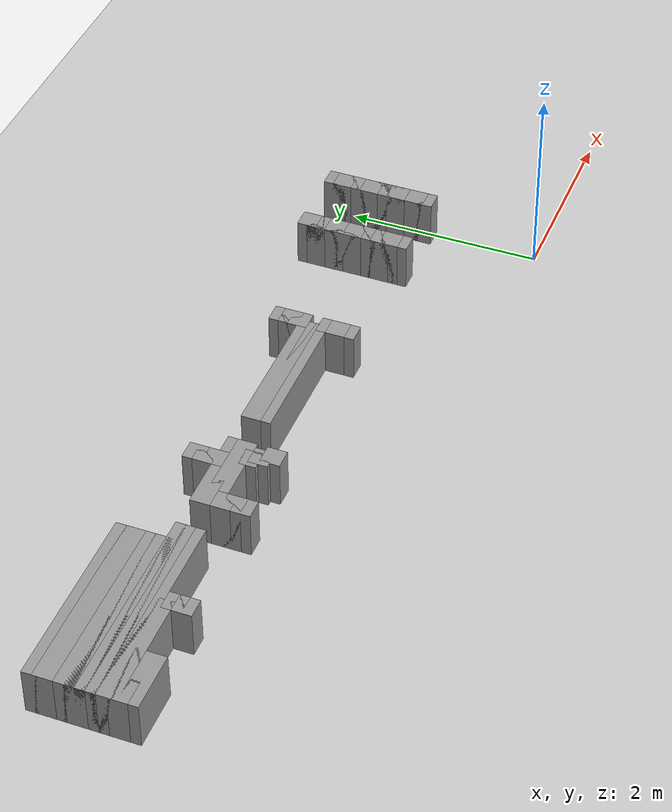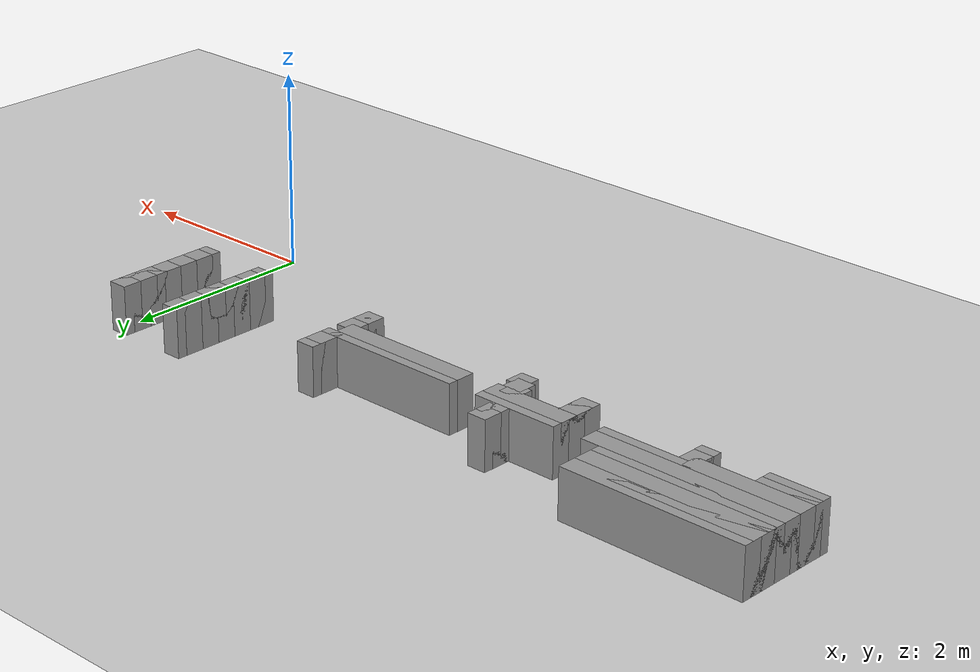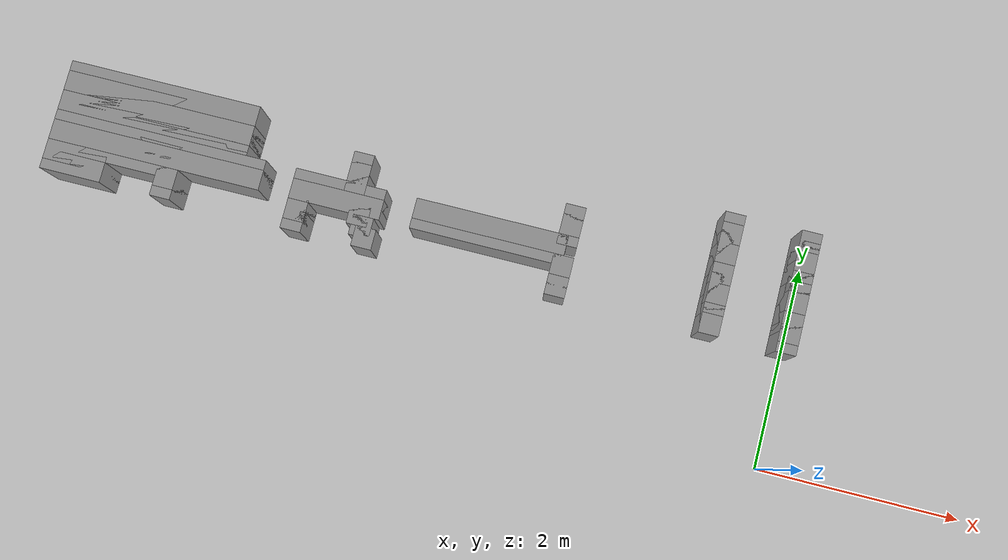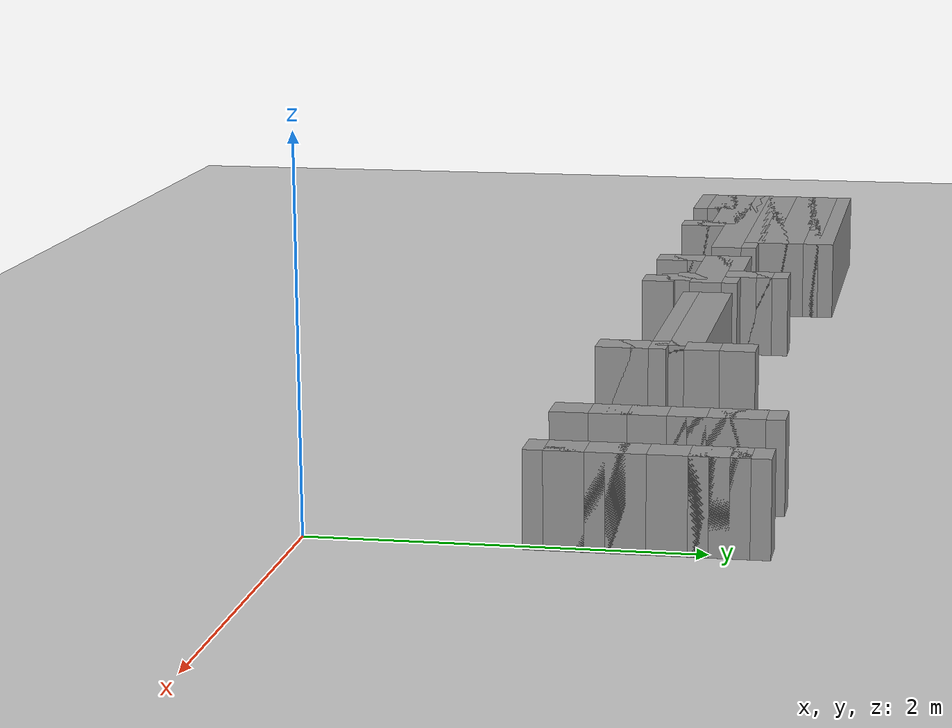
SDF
<sdf version="1.6">
 <world name="GridMap">
  <include><uri>model://sun</uri></include>
  <include><uri>model://ground_plane</uri></include>
  <model name="GridMap">
   <link name="Wall_(0.5,12.0)">
    <collision name="Wall_(0.5,12.0)_Collision">
     <geometry><box><size>0.2 0.2 0.5</size></box></geometry>
     <pose>-0.05 1.2000000000000002 0.25 0 -0 0</pose>
    </collision>
    <inertial>
     <mass>0.5</mass>
     <pose>0 0.01 0 0 0 0</pose>
     <inertia><ixx>0.004</ixx><ixy>0.001</ixy><ixz>0</ixz><iyy>0.006</iyy><iyz>0</iyz><izz>0.007</izz></inertia>
    </inertial>
    <visual name="Wall_(0.5,12.0)_Visual">
     <geometry><box><size>0.2 0.2 0.5</size></box></geometry>
     <pose>-0.05 1.2000000000000002 0.25 0 -0 0</pose>
     <material>
      <script><uri>file://media/materials/scripts/gazebo.material</uri><name>Gazebo/Grey</name></script>
      <ambient>1 1 1 1</ambient>
     </material>
     <meta><layer>0</layer></meta>
    </visual>
   </link>
   <link name="Wall_(8.0,12.0)">
    <collision name="Wall_(8.0,12.0)_Collision">
     <geometry><box><size>0.2 0.2 0.5</size></box></geometry>
     <pose>-0.8 1.2000000000000002 0.25 0 -0 0</pose>
    </collision>
    <inertial>
     <mass>0.5</mass>
     <pose>0 0.01 0 0 0 0</pose>
     <inertia><ixx>0.004</ixx><ixy>0.001</ixy><ixz>0</ixz><iyy>0.006</iyy><iyz>0</iyz><izz>0.007</izz></inertia>
    </inertial>
    <visual name="Wall_(8.0,12.0)_Visual">
     <geometry><box><size>0.2 0.2 0.5</size></box></geometry>
     <pose>-0.8 1.2000000000000002 0.25 0 -0 0</pose>
     <material>
      <script><uri>file://media/materials/scripts/gazebo.material</uri><name>Gazebo/Grey</name></script>
      <ambient>1 1 1 1</ambient>
     </material>
     <meta><layer>0</layer></meta>
    </visual>
   </link>
   <link name="Wall_(23.0,12.0)">
    <collision name="Wall_(23.0,12.0)_Collision">
     <geometry><box><size>0.2 0.2 0.5</size></box></geometry>
     <pose>-2.3000000000000003 1.2000000000000002 0.25 0 -0 0</pose>
    </collision>
    <inertial>
     <mass>0.5</mass>
     <pose>0 0.01 0 0 0 0</pose>
     <inertia><ixx>0.004</ixx><ixy>0.001</ixy><ixz>0</ixz><iyy>0.006</iyy><iyz>0</iyz><izz>0.007</izz></inertia>
    </inertial>
    <visual name="Wall_(23.0,12.0)_Visual">
     <geometry><box><size>0.2 0.2 0.5</size></box></geometry>
     <pose>-2.3000000000000003 1.2000000000000002 0.25 0 -0 0</pose>
     <material>
      <script><uri>file://media/materials/scripts/gazebo.material</uri><name>Gazebo/Grey</name></script>
      <ambient>1 1 1 1</ambient>
     </material>
     <meta><layer>0</layer></meta>
    </visual>
   </link>
   <link name="Wall_(42.0,12.0)">
    <collision name="Wall_(42.0,12.0)_Collision">
     <geometry><box><size>0.2 0.2 0.5</size></box></geometry>
     <pose>-4.2 1.2000000000000002 0.25 0 -0 0</pose>
    </collision>
    <inertial>
     <mass>0.5</mass>
     <pose>0 0.01 0 0 0 0</pose>
     <inertia><ixx>0.004</ixx><ixy>0.001</ixy><ixz>0</ixz><iyy>0.006</iyy><iyz>0</iyz><izz>0.007</izz></inertia>
    </inertial>
    <visual name="Wall_(42.0,12.0)_Visual">
     <geometry><box><size>0.2 0.2 0.5</size></box></geometry>
     <pose>-4.2 1.2000000000000002 0.25 0 -0 0</pose>
     <material>
      <script><uri>file://media/materials/scripts/gazebo.material</uri><name>Gazebo/Grey</name></script>
      <ambient>1 1 1 1</ambient>
     </material>
     <meta><layer>0</layer></meta>
    </visual>
   </link>
   <link name="Wall_(49.0,12.0)">
    <collision name="Wall_(49.0,12.0)_Collision">
     <geometry><box><size>0.2 0.2 0.5</size></box></geometry>
     <pose>-4.9 1.2000000000000002 0.25 0 -0 0</pose>
    </collision>
    <inertial>
     <mass>0.5</mass>
     <pose>0 0.01 0 0 0 0</pose>
     <inertia><ixx>0.004</ixx><ixy>0.001</ixy><ixz>0</ixz><iyy>0.006</iyy><iyz>0</iyz><izz>0.007</izz></inertia>
    </inertial>
    <visual name="Wall_(49.0,12.0)_Visual">
     <geometry><box><size>0.2 0.2 0.5</size></box></geometry>
     <pose>-4.9 1.2000000000000002 0.25 0 -0 0</pose>
     <material>
      <script><uri>file://media/materials/scripts/gazebo.material</uri><name>Gazebo/Grey</name></script>
      <ambient>1 1 1 1</ambient>
     </material>
     <meta><layer>0</layer></meta>
    </visual>
   </link>
   <link name="Wall_(62.0,12.0)">
    <collision name="Wall_(62.0,12.0)_Collision">
     <geometry><box><size>0.2 0.2 0.5</size></box></geometry>
     <pose>-6.2 1.2000000000000002 0.25 0 -0 0</pose>
    </collision>
    <inertial>
     <mass>0.5</mass>
     <pose>0 0.01 0 0 0 0</pose>
     <inertia><ixx>0.004</ixx><ixy>0.001</ixy><ixz>0</ixz><iyy>0.006</iyy><iyz>0</iyz><izz>0.007</izz></inertia>
    </inertial>
    <visual name="Wall_(62.0,12.0)_Visual">
     <geometry><box><size>0.2 0.2 0.5</size></box></geometry>
     <pose>-6.2 1.2000000000000002 0.25 0 -0 0</pose>
     <material>
      <script><uri>file://media/materials/scripts/gazebo.material</uri><name>Gazebo/Grey</name></script>
      <ambient>1 1 1 1</ambient>
     </material>
     <meta><layer>0</layer></meta>
    </visual>
   </link>
   <link name="Wall_(71.0,12.0)">
    <collision name="Wall_(71.0,12.0)_Collision">
     <geometry><box><size>0.6000000000000001 0.2 0.5</size></box></geometry>
     <pose>-7.1000000000000005 1.2000000000000002 0.25 0 -0 0</pose>
    </collision>
    <inertial>
     <mass>0.5</mass>
     <pose>0 0.01 0 0 0 0</pose>
     <inertia><ixx>0.004</ixx><ixy>0.001</ixy><ixz>0</ixz><iyy>0.006</iyy><iyz>0</iyz><izz>0.007</izz></inertia>
    </inertial>
    <visual name="Wall_(71.0,12.0)_Visual">
     <geometry><box><size>0.6000000000000001 0.2 0.5</size></box></geometry>
     <pose>-7.1000000000000005 1.2000000000000002 0.25 0 -0 0</pose>
     <material>
      <script><uri>file://media/materials/scripts/gazebo.material</uri><name>Gazebo/Grey</name></script>
      <ambient>1 1 1 1</ambient>
     </material>
     <meta><layer>0</layer></meta>
    </visual>
   </link>
   <link name="Wall_(0.5,13.0)">
    <collision name="Wall_(0.5,13.0)_Collision">
     <geometry><box><size>0.2 0.2 0.5</size></box></geometry>
     <pose>-0.05 1.3 0.25 0 -0 0</pose>
    </collision>
    <inertial>
     <mass>0.5</mass>
     <pose>0 0.01 0 0 0 0</pose>
     <inertia><ixx>0.004</ixx><ixy>0.001</ixy><ixz>0</ixz><iyy>0.006</iyy><iyz>0</iyz><izz>0.007</izz></inertia>
    </inertial>
    <visual name="Wall_(0.5,13.0)_Visual">
     <geometry><box><size>0.2 0.2 0.5</size></box></geometry>
     <pose>-0.05 1.3 0.25 0 -0 0</pose>
     <material>
      <script><uri>file://media/materials/scripts/gazebo.material</uri><name>Gazebo/Grey</name></script>
      <ambient>1 1 1 1</ambient>
     </material>
     <meta><layer>0</layer></meta>
    </visual>
   </link>
   <link name="Wall_(8.0,13.0)">
    <collision name="Wall_(8.0,13.0)_Collision">
     <geometry><box><size>0.2 0.2 0.5</size></box></geometry>
     <pose>-0.8 1.3 0.25 0 -0 0</pose>
    </collision>
    <inertial>
     <mass>0.5</mass>
     <pose>0 0.01 0 0 0 0</pose>
     <inertia><ixx>0.004</ixx><ixy>0.001</ixy><ixz>0</ixz><iyy>0.006</iyy><iyz>0</iyz><izz>0.007</izz></inertia>
    </inertial>
    <visual name="Wall_(8.0,13.0)_Visual">
     <geometry><box><size>0.2 0.2 0.5</size></box></geometry>
     <pose>-0.8 1.3 0.25 0 -0 0</pose>
     <material>
      <script><uri>file://media/materials/scripts/gazebo.material</uri><name>Gazebo/Grey</name></script>
      <ambient>1 1 1 1</ambient>
     </material>
     <meta><layer>0</layer></meta>
    </visual>
   </link>
   <link name="Wall_(23.0,13.0)">
    <collision name="Wall_(23.0,13.0)_Collision">
     <geometry><box><size>0.2 0.2 0.5</size></box></geometry>
     <pose>-2.3000000000000003 1.3 0.25 0 -0 0</pose>
    </collision>
    <inertial>
     <mass>0.5</mass>
     <pose>0 0.01 0 0 0 0</pose>
     <inertia><ixx>0.004</ixx><ixy>0.001</ixy><ixz>0</ixz><iyy>0.006</iyy><iyz>0</iyz><izz>0.007</izz></inertia>
    </inertial>
    <visual name="Wall_(23.0,13.0)_Visual">
     <geometry><box><size>0.2 0.2 0.5</size></box></geometry>
     <pose>-2.3000000000000003 1.3 0.25 0 -0 0</pose>
     <material>
      <script><uri>file://media/materials/scripts/gazebo.material</uri><name>Gazebo/Grey</name></script>
      <ambient>1 1 1 1</ambient>
     </material>
     <meta><layer>0</layer></meta>
    </visual>
   </link>
   <link name="Wall_(42.5,13.0)">
    <collision name="Wall_(42.5,13.0)_Collision">
     <geometry><box><size>0.2 0.2 0.5</size></box></geometry>
     <pose>-4.25 1.3 0.25 0 -0 0</pose>
    </collision>
    <inertial>
     <mass>0.5</mass>
     <pose>0 0.01 0 0 0 0</pose>
     <inertia><ixx>0.004</ixx><ixy>0.001</ixy><ixz>0</ixz><iyy>0.006</iyy><iyz>0</iyz><izz>0.007</izz></inertia>
    </inertial>
    <visual name="Wall_(42.5,13.0)_Visual">
     <geometry><box><size>0.2 0.2 0.5</size></box></geometry>
     <pose>-4.25 1.3 0.25 0 -0 0</pose>
     <material>
      <script><uri>file://media/materials/scripts/gazebo.material</uri><name>Gazebo/Grey</name></script>
      <ambient>1 1 1 1</ambient>
     </material>
     <meta><layer>0</layer></meta>
    </visual>
   </link>
   <link name="Wall_(49.0,13.0)">
    <collision name="Wall_(49.0,13.0)_Collision">
     <geometry><box><size>0.2 0.2 0.5</size></box></geometry>
     <pose>-4.9 1.3 0.25 0 -0 0</pose>
    </collision>
    <inertial>
     <mass>0.5</mass>
     <pose>0 0.01 0 0 0 0</pose>
     <inertia><ixx>0.004</ixx><ixy>0.001</ixy><ixz>0</ixz><iyy>0.006</iyy><iyz>0</iyz><izz>0.007</izz></inertia>
    </inertial>
    <visual name="Wall_(49.0,13.0)_Visual">
     <geometry><box><size>0.2 0.2 0.5</size></box></geometry>
     <pose>-4.9 1.3 0.25 0 -0 0</pose>
     <material>
      <script><uri>file://media/materials/scripts/gazebo.material</uri><name>Gazebo/Grey</name></script>
      <ambient>1 1 1 1</ambient>
     </material>
     <meta><layer>0</layer></meta>
    </visual>
   </link>
   <link name="Wall_(62.0,13.0)">
    <collision name="Wall_(62.0,13.0)_Collision">
     <geometry><box><size>0.2 0.2 0.5</size></box></geometry>
     <pose>-6.2 1.3 0.25 0 -0 0</pose>
    </collision>
    <inertial>
     <mass>0.5</mass>
     <pose>0 0.01 0 0 0 0</pose>
     <inertia><ixx>0.004</ixx><ixy>0.001</ixy><ixz>0</ixz><iyy>0.006</iyy><iyz>0</iyz><izz>0.007</izz></inertia>
    </inertial>
    <visual name="Wall_(62.0,13.0)_Visual">
     <geometry><box><size>0.2 0.2 0.5</size></box></geometry>
     <pose>-6.2 1.3 0.25 0 -0 0</pose>
     <material>
      <script><uri>file://media/materials/scripts/gazebo.material</uri><name>Gazebo/Grey</name></script>
      <ambient>1 1 1 1</ambient>
     </material>
     <meta><layer>0</layer></meta>
    </visual>
   </link>
   <link name="Wall_(71.0,13.0)">
    <collision name="Wall_(71.0,13.0)_Collision">
     <geometry><box><size>0.6000000000000001 0.2 0.5</size></box></geometry>
     <pose>-7.1000000000000005 1.3 0.25 0 -0 0</pose>
    </collision>
    <inertial>
     <mass>0.5</mass>
     <pose>0 0.01 0 0 0 0</pose>
     <inertia><ixx>0.004</ixx><ixy>0.001</ixy><ixz>0</ixz><iyy>0.006</iyy><iyz>0</iyz><izz>0.007</izz></inertia>
    </inertial>
    <visual name="Wall_(71.0,13.0)_Visual">
     <geometry><box><size>0.6000000000000001 0.2 0.5</size></box></geometry>
     <pose>-7.1000000000000005 1.3 0.25 0 -0 0</pose>
     <material>
      <script><uri>file://media/materials/scripts/gazebo.material</uri><name>Gazebo/Grey</name></script>
      <ambient>1 1 1 1</ambient>
     </material>
     <meta><layer>0</layer></meta>
    </visual>
   </link>
   <link name="Wall_(0.5,14.0)">
    <collision name="Wall_(0.5,14.0)_Collision">
     <geometry><box><size>0.2 0.2 0.5</size></box></geometry>
     <pose>-0.05 1.4000000000000001 0.25 0 -0 0</pose>
    </collision>
    <inertial>
     <mass>0.5</mass>
     <pose>0 0.01 0 0 0 0</pose>
     <inertia><ixx>0.004</ixx><ixy>0.001</ixy><ixz>0</ixz><iyy>0.006</iyy><iyz>0</iyz><izz>0.007</izz></inertia>
    </inertial>
    <visual name="Wall_(0.5,14.0)_Visual">
     <geometry><box><size>0.2 0.2 0.5</size></box></geometry>
     <pose>-0.05 1.4000000000000001 0.25 0 -0 0</pose>
     <material>
      <script><uri>file://media/materials/scripts/gazebo.material</uri><name>Gazebo/Grey</name></script>
      <ambient>1 1 1 1</ambient>
     </material>
     <meta><layer>0</layer></meta>
    </visual>
   </link>
   <link name="Wall_(8.0,14.0)">
    <collision name="Wall_(8.0,14.0)_Collision">
     <geometry><box><size>0.2 0.2 0.5</size></box></geometry>
     <pose>-0.8 1.4000000000000001 0.25 0 -0 0</pose>
    </collision>
    <inertial>
     <mass>0.5</mass>
     <pose>0 0.01 0 0 0 0</pose>
     <inertia><ixx>0.004</ixx><ixy>0.001</ixy><ixz>0</ixz><iyy>0.006</iyy><iyz>0</iyz><izz>0.007</izz></inertia>
    </inertial>
    <visual name="Wall_(8.0,14.0)_Visual">
     <geometry><box><size>0.2 0.2 0.5</size></box></geometry>
     <pose>-0.8 1.4000000000000001 0.25 0 -0 0</pose>
     <material>
      <script><uri>file://media/materials/scripts/gazebo.material</uri><name>Gazebo/Grey</name></script>
      <ambient>1 1 1 1</ambient>
     </material>
     <meta><layer>0</layer></meta>
    </visual>
   </link>
   <link name="Wall_(23.0,14.0)">
    <collision name="Wall_(23.0,14.0)_Collision">
     <geometry><box><size>0.2 0.2 0.5</size></box></geometry>
     <pose>-2.3000000000000003 1.4000000000000001 0.25 0 -0 0</pose>
    </collision>
    <inertial>
     <mass>0.5</mass>
     <pose>0 0.01 0 0 0 0</pose>
     <inertia><ixx>0.004</ixx><ixy>0.001</ixy><ixz>0</ixz><iyy>0.006</iyy><iyz>0</iyz><izz>0.007</izz></inertia>
    </inertial>
    <visual name="Wall_(23.0,14.0)_Visual">
     <geometry><box><size>0.2 0.2 0.5</size></box></geometry>
     <pose>-2.3000000000000003 1.4000000000000001 0.25 0 -0 0</pose>
     <material>
      <script><uri>file://media/materials/scripts/gazebo.material</uri><name>Gazebo/Grey</name></script>
      <ambient>1 1 1 1</ambient>
     </material>
     <meta><layer>0</layer></meta>
    </visual>
   </link>
   <link name="Wall_(43.0,14.0)">
    <collision name="Wall_(43.0,14.0)_Collision">
     <geometry><box><size>0.2 0.2 0.5</size></box></geometry>
     <pose>-4.3 1.4000000000000001 0.25 0 -0 0</pose>
    </collision>
    <inertial>
     <mass>0.5</mass>
     <pose>0 0.01 0 0 0 0</pose>
     <inertia><ixx>0.004</ixx><ixy>0.001</ixy><ixz>0</ixz><iyy>0.006</iyy><iyz>0</iyz><izz>0.007</izz></inertia>
    </inertial>
    <visual name="Wall_(43.0,14.0)_Visual">
     <geometry><box><size>0.2 0.2 0.5</size></box></geometry>
     <pose>-4.3 1.4000000000000001 0.25 0 -0 0</pose>
     <material>
      <script><uri>file://media/materials/scripts/gazebo.material</uri><name>Gazebo/Grey</name></script>
      <ambient>1 1 1 1</ambient>
     </material>
     <meta><layer>0</layer></meta>
    </visual>
   </link>
   <link name="Wall_(49.0,14.0)">
    <collision name="Wall_(49.0,14.0)_Collision">
     <geometry><box><size>0.2 0.2 0.5</size></box></geometry>
     <pose>-4.9 1.4000000000000001 0.25 0 -0 0</pose>
    </collision>
    <inertial>
     <mass>0.5</mass>
     <pose>0 0.01 0 0 0 0</pose>
     <inertia><ixx>0.004</ixx><ixy>0.001</ixy><ixz>0</ixz><iyy>0.006</iyy><iyz>0</iyz><izz>0.007</izz></inertia>
    </inertial>
    <visual name="Wall_(49.0,14.0)_Visual">
     <geometry><box><size>0.2 0.2 0.5</size></box></geometry>
     <pose>-4.9 1.4000000000000001 0.25 0 -0 0</pose>
     <material>
      <script><uri>file://media/materials/scripts/gazebo.material</uri><name>Gazebo/Grey</name></script>
      <ambient>1 1 1 1</ambient>
     </material>
     <meta><layer>0</layer></meta>
    </visual>
   </link>
   <link name="Wall_(68.0,14.0)">
    <collision name="Wall_(68.0,14.0)_Collision">
     <geometry><box><size>1.2000000000000002 0.2 0.5</size></box></geometry>
     <pose>-6.800000000000001 1.4000000000000001 0.25 0 -0 0</pose>
    </collision>
    <inertial>
     <mass>0.5</mass>
     <pose>0 0.01 0 0 0 0</pose>
     <inertia><ixx>0.004</ixx><ixy>0.001</ixy><ixz>0</ixz><iyy>0.006</iyy><iyz>0</iyz><izz>0.007</izz></inertia>
    </inertial>
    <visual name="Wall_(68.0,14.0)_Visual">
     <geometry><box><size>1.2000000000000002 0.2 0.5</size></box></geometry>
     <pose>-6.800000000000001 1.4000000000000001 0.25 0 -0 0</pose>
     <material>
      <script><uri>file://media/materials/scripts/gazebo.material</uri><name>Gazebo/Grey</name></script>
      <ambient>1 1 1 1</ambient>
     </material>
     <meta><layer>0</layer></meta>
    </visual>
   </link>
   <link name="Wall_(0.5,15.0)">
    <collision name="Wall_(0.5,15.0)_Collision">
     <geometry><box><size>0.2 0.2 0.5</size></box></geometry>
     <pose>-0.05 1.5 0.25 0 -0 0</pose>
    </collision>
    <inertial>
     <mass>0.5</mass>
     <pose>0 0.01 0 0 0 0</pose>
     <inertia><ixx>0.004</ixx><ixy>0.001</ixy><ixz>0</ixz><iyy>0.006</iyy><iyz>0</iyz><izz>0.007</izz></inertia>
    </inertial>
    <visual name="Wall_(0.5,15.0)_Visual">
     <geometry><box><size>0.2 0.2 0.5</size></box></geometry>
     <pose>-0.05 1.5 0.25 0 -0 0</pose>
     <material>
      <script><uri>file://media/materials/scripts/gazebo.material</uri><name>Gazebo/Grey</name></script>
      <ambient>1 1 1 1</ambient>
     </material>
     <meta><layer>0</layer></meta>
    </visual>
   </link>
   <link name="Wall_(8.0,15.0)">
    <collision name="Wall_(8.0,15.0)_Collision">
     <geometry><box><size>0.2 0.2 0.5</size></box></geometry>
     <pose>-0.8 1.5 0.25 0 -0 0</pose>
    </collision>
    <inertial>
     <mass>0.5</mass>
     <pose>0 0.01 0 0 0 0</pose>
     <inertia><ixx>0.004</ixx><ixy>0.001</ixy><ixz>0</ixz><iyy>0.006</iyy><iyz>0</iyz><izz>0.007</izz></inertia>
    </inertial>
    <visual name="Wall_(8.0,15.0)_Visual">
     <geometry><box><size>0.2 0.2 0.5</size></box></geometry>
     <pose>-0.8 1.5 0.25 0 -0 0</pose>
     <material>
      <script><uri>file://media/materials/scripts/gazebo.material</uri><name>Gazebo/Grey</name></script>
      <ambient>1 1 1 1</ambient>
     </material>
     <meta><layer>0</layer></meta>
    </visual>
   </link>
   <link name="Wall_(30.5,15.0)">
    <collision name="Wall_(30.5,15.0)_Collision">
     <geometry><box><size>1.5 0.2 0.5</size></box></geometry>
     <pose>-3.0500000000000003 1.5 0.25 0 -0 0</pose>
    </collision>
    <inertial>
     <mass>0.5</mass>
     <pose>0 0.01 0 0 0 0</pose>
     <inertia><ixx>0.004</ixx><ixy>0.001</ixy><ixz>0</ixz><iyy>0.006</iyy><iyz>0</iyz><izz>0.007</izz></inertia>
    </inertial>
    <visual name="Wall_(30.5,15.0)_Visual">
     <geometry><box><size>1.5 0.2 0.5</size></box></geometry>
     <pose>-3.0500000000000003 1.5 0.25 0 -0 0</pose>
     <material>
      <script><uri>file://media/materials/scripts/gazebo.material</uri><name>Gazebo/Grey</name></script>
      <ambient>1 1 1 1</ambient>
     </material>
     <meta><layer>0</layer></meta>
    </visual>
   </link>
   <link name="Wall_(45.5,15.0)">
    <collision name="Wall_(45.5,15.0)_Collision">
     <geometry><box><size>0.9 0.2 0.5</size></box></geometry>
     <pose>-4.55 1.5 0.25 0 -0 0</pose>
    </collision>
    <inertial>
     <mass>0.5</mass>
     <pose>0 0.01 0 0 0 0</pose>
     <inertia><ixx>0.004</ixx><ixy>0.001</ixy><ixz>0</ixz><iyy>0.006</iyy><iyz>0</iyz><izz>0.007</izz></inertia>
    </inertial>
    <visual name="Wall_(45.5,15.0)_Visual">
     <geometry><box><size>0.9 0.2 0.5</size></box></geometry>
     <pose>-4.55 1.5 0.25 0 -0 0</pose>
     <material>
      <script><uri>file://media/materials/scripts/gazebo.material</uri><name>Gazebo/Grey</name></script>
      <ambient>1 1 1 1</ambient>
     </material>
     <meta><layer>0</layer></meta>
    </visual>
   </link>
   <link name="Wall_(63.5,15.0)">
    <collision name="Wall_(63.5,15.0)_Collision">
     <geometry><box><size>2.1 0.2 0.5</size></box></geometry>
     <pose>-6.3500000000000005 1.5 0.25 0 -0 0</pose>
    </collision>
    <inertial>
     <mass>0.5</mass>
     <pose>0 0.01 0 0 0 0</pose>
     <inertia><ixx>0.004</ixx><ixy>0.001</ixy><ixz>0</ixz><iyy>0.006</iyy><iyz>0</iyz><izz>0.007</izz></inertia>
    </inertial>
    <visual name="Wall_(63.5,15.0)_Visual">
     <geometry><box><size>2.1 0.2 0.5</size></box></geometry>
     <pose>-6.3500000000000005 1.5 0.25 0 -0 0</pose>
     <material>
      <script><uri>file://media/materials/scripts/gazebo.material</uri><name>Gazebo/Grey</name></script>
      <ambient>1 1 1 1</ambient>
     </material>
     <meta><layer>0</layer></meta>
    </visual>
   </link>
   <link name="Wall_(0.5,16.0)">
    <collision name="Wall_(0.5,16.0)_Collision">
     <geometry><box><size>0.2 0.2 0.5</size></box></geometry>
     <pose>-0.05 1.6 0.25 0 -0 0</pose>
    </collision>
    <inertial>
     <mass>0.5</mass>
     <pose>0 0.01 0 0 0 0</pose>
     <inertia><ixx>0.004</ixx><ixy>0.001</ixy><ixz>0</ixz><iyy>0.006</iyy><iyz>0</iyz><izz>0.007</izz></inertia>
    </inertial>
    <visual name="Wall_(0.5,16.0)_Visual">
     <geometry><box><size>0.2 0.2 0.5</size></box></geometry>
     <pose>-0.05 1.6 0.25 0 -0 0</pose>
     <material>
      <script><uri>file://media/materials/scripts/gazebo.material</uri><name>Gazebo/Grey</name></script>
      <ambient>1 1 1 1</ambient>
     </material>
     <meta><layer>0</layer></meta>
    </visual>
   </link>
   <link name="Wall_(8.0,16.0)">
    <collision name="Wall_(8.0,16.0)_Collision">
     <geometry><box><size>0.2 0.2 0.5</size></box></geometry>
     <pose>-0.8 1.6 0.25 0 -0 0</pose>
    </collision>
    <inertial>
     <mass>0.5</mass>
     <pose>0 0.01 0 0 0 0</pose>
     <inertia><ixx>0.004</ixx><ixy>0.001</ixy><ixz>0</ixz><iyy>0.006</iyy><iyz>0</iyz><izz>0.007</izz></inertia>
    </inertial>
    <visual name="Wall_(8.0,16.0)_Visual">
     <geometry><box><size>0.2 0.2 0.5</size></box></geometry>
     <pose>-0.8 1.6 0.25 0 -0 0</pose>
     <material>
      <script><uri>file://media/materials/scripts/gazebo.material</uri><name>Gazebo/Grey</name></script>
      <ambient>1 1 1 1</ambient>
     </material>
     <meta><layer>0</layer></meta>
    </visual>
   </link>
   <link name="Wall_(30.5,16.0)">
    <collision name="Wall_(30.5,16.0)_Collision">
     <geometry><box><size>1.5 0.2 0.5</size></box></geometry>
     <pose>-3.0500000000000003 1.6 0.25 0 -0 0</pose>
    </collision>
    <inertial>
     <mass>0.5</mass>
     <pose>0 0.01 0 0 0 0</pose>
     <inertia><ixx>0.004</ixx><ixy>0.001</ixy><ixz>0</ixz><iyy>0.006</iyy><iyz>0</iyz><izz>0.007</izz></inertia>
    </inertial>
    <visual name="Wall_(30.5,16.0)_Visual">
     <geometry><box><size>1.5 0.2 0.5</size></box></geometry>
     <pose>-3.0500000000000003 1.6 0.25 0 -0 0</pose>
     <material>
      <script><uri>file://media/materials/scripts/gazebo.material</uri><name>Gazebo/Grey</name></script>
      <ambient>1 1 1 1</ambient>
     </material>
     <meta><layer>0</layer></meta>
    </visual>
   </link>
   <link name="Wall_(45.5,16.0)">
    <collision name="Wall_(45.5,16.0)_Collision">
     <geometry><box><size>0.9 0.2 0.5</size></box></geometry>
     <pose>-4.55 1.6 0.25 0 -0 0</pose>
    </collision>
    <inertial>
     <mass>0.5</mass>
     <pose>0 0.01 0 0 0 0</pose>
     <inertia><ixx>0.004</ixx><ixy>0.001</ixy><ixz>0</ixz><iyy>0.006</iyy><iyz>0</iyz><izz>0.007</izz></inertia>
    </inertial>
    <visual name="Wall_(45.5,16.0)_Visual">
     <geometry><box><size>0.9 0.2 0.5</size></box></geometry>
     <pose>-4.55 1.6 0.25 0 -0 0</pose>
     <material>
      <script><uri>file://media/materials/scripts/gazebo.material</uri><name>Gazebo/Grey</name></script>
      <ambient>1 1 1 1</ambient>
     </material>
     <meta><layer>0</layer></meta>
    </visual>
   </link>
   <link name="Wall_(63.5,16.0)">
    <collision name="Wall_(63.5,16.0)_Collision">
     <geometry><box><size>2.1 0.2 0.5</size></box></geometry>
     <pose>-6.3500000000000005 1.6 0.25 0 -0 0</pose>
    </collision>
    <inertial>
     <mass>0.5</mass>
     <pose>0 0.01 0 0 0 0</pose>
     <inertia><ixx>0.004</ixx><ixy>0.001</ixy><ixz>0</ixz><iyy>0.006</iyy><iyz>0</iyz><izz>0.007</izz></inertia>
    </inertial>
    <visual name="Wall_(63.5,16.0)_Visual">
     <geometry><box><size>2.1 0.2 0.5</size></box></geometry>
     <pose>-6.3500000000000005 1.6 0.25 0 -0 0</pose>
     <material>
      <script><uri>file://media/materials/scripts/gazebo.material</uri><name>Gazebo/Grey</name></script>
      <ambient>1 1 1 1</ambient>
     </material>
     <meta><layer>0</layer></meta>
    </visual>
   </link>
   <link name="Wall_(0.5,17.0)">
    <collision name="Wall_(0.5,17.0)_Collision">
     <geometry><box><size>0.2 0.2 0.5</size></box></geometry>
     <pose>-0.05 1.7000000000000002 0.25 0 -0 0</pose>
    </collision>
    <inertial>
     <mass>0.5</mass>
     <pose>0 0.01 0 0 0 0</pose>
     <inertia><ixx>0.004</ixx><ixy>0.001</ixy><ixz>0</ixz><iyy>0.006</iyy><iyz>0</iyz><izz>0.007</izz></inertia>
    </inertial>
    <visual name="Wall_(0.5,17.0)_Visual">
     <geometry><box><size>0.2 0.2 0.5</size></box></geometry>
     <pose>-0.05 1.7000000000000002 0.25 0 -0 0</pose>
     <material>
      <script><uri>file://media/materials/scripts/gazebo.material</uri><name>Gazebo/Grey</name></script>
      <ambient>1 1 1 1</ambient>
     </material>
     <meta><layer>0</layer></meta>
    </visual>
   </link>
   <link name="Wall_(8.0,17.0)">
    <collision name="Wall_(8.0,17.0)_Collision">
     <geometry><box><size>0.2 0.2 0.5</size></box></geometry>
     <pose>-0.8 1.7000000000000002 0.25 0 -0 0</pose>
    </collision>
    <inertial>
     <mass>0.5</mass>
     <pose>0 0.01 0 0 0 0</pose>
     <inertia><ixx>0.004</ixx><ixy>0.001</ixy><ixz>0</ixz><iyy>0.006</iyy><iyz>0</iyz><izz>0.007</izz></inertia>
    </inertial>
    <visual name="Wall_(8.0,17.0)_Visual">
     <geometry><box><size>0.2 0.2 0.5</size></box></geometry>
     <pose>-0.8 1.7000000000000002 0.25 0 -0 0</pose>
     <material>
      <script><uri>file://media/materials/scripts/gazebo.material</uri><name>Gazebo/Grey</name></script>
      <ambient>1 1 1 1</ambient>
     </material>
     <meta><layer>0</layer></meta>
    </visual>
   </link>
   <link name="Wall_(23.0,17.0)">
    <collision name="Wall_(23.0,17.0)_Collision">
     <geometry><box><size>0.2 0.2 0.5</size></box></geometry>
     <pose>-2.3000000000000003 1.7000000000000002 0.25 0 -0 0</pose>
    </collision>
    <inertial>
     <mass>0.5</mass>
     <pose>0 0.01 0 0 0 0</pose>
     <inertia><ixx>0.004</ixx><ixy>0.001</ixy><ixz>0</ixz><iyy>0.006</iyy><iyz>0</iyz><izz>0.007</izz></inertia>
    </inertial>
    <visual name="Wall_(23.0,17.0)_Visual">
     <geometry><box><size>0.2 0.2 0.5</size></box></geometry>
     <pose>-2.3000000000000003 1.7000000000000002 0.25 0 -0 0</pose>
     <material>
      <script><uri>file://media/materials/scripts/gazebo.material</uri><name>Gazebo/Grey</name></script>
      <ambient>1 1 1 1</ambient>
     </material>
     <meta><layer>0</layer></meta>
    </visual>
   </link>
   <link name="Wall_(44.0,17.0)">
    <collision name="Wall_(44.0,17.0)_Collision">
     <geometry><box><size>0.2 0.2 0.5</size></box></geometry>
     <pose>-4.4 1.7000000000000002 0.25 0 -0 0</pose>
    </collision>
    <inertial>
     <mass>0.5</mass>
     <pose>0 0.01 0 0 0 0</pose>
     <inertia><ixx>0.004</ixx><ixy>0.001</ixy><ixz>0</ixz><iyy>0.006</iyy><iyz>0</iyz><izz>0.007</izz></inertia>
    </inertial>
    <visual name="Wall_(44.0,17.0)_Visual">
     <geometry><box><size>0.2 0.2 0.5</size></box></geometry>
     <pose>-4.4 1.7000000000000002 0.25 0 -0 0</pose>
     <material>
      <script><uri>file://media/materials/scripts/gazebo.material</uri><name>Gazebo/Grey</name></script>
      <ambient>1 1 1 1</ambient>
     </material>
     <meta><layer>0</layer></meta>
    </visual>
   </link>
   <link name="Wall_(64.5,17.0)">
    <collision name="Wall_(64.5,17.0)_Collision">
     <geometry><box><size>1.9000000000000001 0.2 0.5</size></box></geometry>
     <pose>-6.45 1.7000000000000002 0.25 0 -0 0</pose>
    </collision>
    <inertial>
     <mass>0.5</mass>
     <pose>0 0.01 0 0 0 0</pose>
     <inertia><ixx>0.004</ixx><ixy>0.001</ixy><ixz>0</ixz><iyy>0.006</iyy><iyz>0</iyz><izz>0.007</izz></inertia>
    </inertial>
    <visual name="Wall_(64.5,17.0)_Visual">
     <geometry><box><size>1.9000000000000001 0.2 0.5</size></box></geometry>
     <pose>-6.45 1.7000000000000002 0.25 0 -0 0</pose>
     <material>
      <script><uri>file://media/materials/scripts/gazebo.material</uri><name>Gazebo/Grey</name></script>
      <ambient>1 1 1 1</ambient>
     </material>
     <meta><layer>0</layer></meta>
    </visual>
   </link>
   <link name="Wall_(0.5,18.0)">
    <collision name="Wall_(0.5,18.0)_Collision">
     <geometry><box><size>0.2 0.2 0.5</size></box></geometry>
     <pose>-0.05 1.8 0.25 0 -0 0</pose>
    </collision>
    <inertial>
     <mass>0.5</mass>
     <pose>0 0.01 0 0 0 0</pose>
     <inertia><ixx>0.004</ixx><ixy>0.001</ixy><ixz>0</ixz><iyy>0.006</iyy><iyz>0</iyz><izz>0.007</izz></inertia>
    </inertial>
    <visual name="Wall_(0.5,18.0)_Visual">
     <geometry><box><size>0.2 0.2 0.5</size></box></geometry>
     <pose>-0.05 1.8 0.25 0 -0 0</pose>
     <material>
      <script><uri>file://media/materials/scripts/gazebo.material</uri><name>Gazebo/Grey</name></script>
      <ambient>1 1 1 1</ambient>
     </material>
     <meta><layer>0</layer></meta>
    </visual>
   </link>
   <link name="Wall_(8.0,18.0)">
    <collision name="Wall_(8.0,18.0)_Collision">
     <geometry><box><size>0.2 0.2 0.5</size></box></geometry>
     <pose>-0.8 1.8 0.25 0 -0 0</pose>
    </collision>
    <inertial>
     <mass>0.5</mass>
     <pose>0 0.01 0 0 0 0</pose>
     <inertia><ixx>0.004</ixx><ixy>0.001</ixy><ixz>0</ixz><iyy>0.006</iyy><iyz>0</iyz><izz>0.007</izz></inertia>
    </inertial>
    <visual name="Wall_(8.0,18.0)_Visual">
     <geometry><box><size>0.2 0.2 0.5</size></box></geometry>
     <pose>-0.8 1.8 0.25 0 -0 0</pose>
     <material>
      <script><uri>file://media/materials/scripts/gazebo.material</uri><name>Gazebo/Grey</name></script>
      <ambient>1 1 1 1</ambient>
     </material>
     <meta><layer>0</layer></meta>
    </visual>
   </link>
   <link name="Wall_(23.0,18.0)">
    <collision name="Wall_(23.0,18.0)_Collision">
     <geometry><box><size>0.2 0.2 0.5</size></box></geometry>
     <pose>-2.3000000000000003 1.8 0.25 0 -0 0</pose>
    </collision>
    <inertial>
     <mass>0.5</mass>
     <pose>0 0.01 0 0 0 0</pose>
     <inertia><ixx>0.004</ixx><ixy>0.001</ixy><ixz>0</ixz><iyy>0.006</iyy><iyz>0</iyz><izz>0.007</izz></inertia>
    </inertial>
    <visual name="Wall_(23.0,18.0)_Visual">
     <geometry><box><size>0.2 0.2 0.5</size></box></geometry>
     <pose>-2.3000000000000003 1.8 0.25 0 -0 0</pose>
     <material>
      <script><uri>file://media/materials/scripts/gazebo.material</uri><name>Gazebo/Grey</name></script>
      <ambient>1 1 1 1</ambient>
     </material>
     <meta><layer>0</layer></meta>
    </visual>
   </link>
   <link name="Wall_(44.0,18.0)">
    <collision name="Wall_(44.0,18.0)_Collision">
     <geometry><box><size>0.2 0.2 0.5</size></box></geometry>
     <pose>-4.4 1.8 0.25 0 -0 0</pose>
    </collision>
    <inertial>
     <mass>0.5</mass>
     <pose>0 0.01 0 0 0 0</pose>
     <inertia><ixx>0.004</ixx><ixy>0.001</ixy><ixz>0</ixz><iyy>0.006</iyy><iyz>0</iyz><izz>0.007</izz></inertia>
    </inertial>
    <visual name="Wall_(44.0,18.0)_Visual">
     <geometry><box><size>0.2 0.2 0.5</size></box></geometry>
     <pose>-4.4 1.8 0.25 0 -0 0</pose>
     <material>
      <script><uri>file://media/materials/scripts/gazebo.material</uri><name>Gazebo/Grey</name></script>
      <ambient>1 1 1 1</ambient>
     </material>
     <meta><layer>0</layer></meta>
    </visual>
   </link>
   <link name="Wall_(64.5,18.0)">
    <collision name="Wall_(64.5,18.0)_Collision">
     <geometry><box><size>1.9000000000000001 0.2 0.5</size></box></geometry>
     <pose>-6.45 1.8 0.25 0 -0 0</pose>
    </collision>
    <inertial>
     <mass>0.5</mass>
     <pose>0 0.01 0 0 0 0</pose>
     <inertia><ixx>0.004</ixx><ixy>0.001</ixy><ixz>0</ixz><iyy>0.006</iyy><iyz>0</iyz><izz>0.007</izz></inertia>
    </inertial>
    <visual name="Wall_(64.5,18.0)_Visual">
     <geometry><box><size>1.9000000000000001 0.2 0.5</size></box></geometry>
     <pose>-6.45 1.8 0.25 0 -0 0</pose>
     <material>
      <script><uri>file://media/materials/scripts/gazebo.material</uri><name>Gazebo/Grey</name></script>
      <ambient>1 1 1 1</ambient>
     </material>
     <meta><layer>0</layer></meta>
    </visual>
   </link>
   <link name="Wall_(0.5,19.0)">
    <collision name="Wall_(0.5,19.0)_Collision">
     <geometry><box><size>0.2 0.2 0.5</size></box></geometry>
     <pose>-0.05 1.9000000000000001 0.25 0 -0 0</pose>
    </collision>
    <inertial>
     <mass>0.5</mass>
     <pose>0 0.01 0 0 0 0</pose>
     <inertia><ixx>0.004</ixx><ixy>0.001</ixy><ixz>0</ixz><iyy>0.006</iyy><iyz>0</iyz><izz>0.007</izz></inertia>
    </inertial>
    <visual name="Wall_(0.5,19.0)_Visual">
     <geometry><box><size>0.2 0.2 0.5</size></box></geometry>
     <pose>-0.05 1.9000000000000001 0.25 0 -0 0</pose>
     <material>
      <script><uri>file://media/materials/scripts/gazebo.material</uri><name>Gazebo/Grey</name></script>
      <ambient>1 1 1 1</ambient>
     </material>
     <meta><layer>0</layer></meta>
    </visual>
   </link>
   <link name="Wall_(8.0,19.0)">
    <collision name="Wall_(8.0,19.0)_Collision">
     <geometry><box><size>0.2 0.2 0.5</size></box></geometry>
     <pose>-0.8 1.9000000000000001 0.25 0 -0 0</pose>
    </collision>
    <inertial>
     <mass>0.5</mass>
     <pose>0 0.01 0 0 0 0</pose>
     <inertia><ixx>0.004</ixx><ixy>0.001</ixy><ixz>0</ixz><iyy>0.006</iyy><iyz>0</iyz><izz>0.007</izz></inertia>
    </inertial>
    <visual name="Wall_(8.0,19.0)_Visual">
     <geometry><box><size>0.2 0.2 0.5</size></box></geometry>
     <pose>-0.8 1.9000000000000001 0.25 0 -0 0</pose>
     <material>
      <script><uri>file://media/materials/scripts/gazebo.material</uri><name>Gazebo/Grey</name></script>
      <ambient>1 1 1 1</ambient>
     </material>
     <meta><layer>0</layer></meta>
    </visual>
   </link>
   <link name="Wall_(23.0,19.0)">
    <collision name="Wall_(23.0,19.0)_Collision">
     <geometry><box><size>0.2 0.2 0.5</size></box></geometry>
     <pose>-2.3000000000000003 1.9000000000000001 0.25 0 -0 0</pose>
    </collision>
    <inertial>
     <mass>0.5</mass>
     <pose>0 0.01 0 0 0 0</pose>
     <inertia><ixx>0.004</ixx><ixy>0.001</ixy><ixz>0</ixz><iyy>0.006</iyy><iyz>0</iyz><izz>0.007</izz></inertia>
    </inertial>
    <visual name="Wall_(23.0,19.0)_Visual">
     <geometry><box><size>0.2 0.2 0.5</size></box></geometry>
     <pose>-2.3000000000000003 1.9000000000000001 0.25 0 -0 0</pose>
     <material>
      <script><uri>file://media/materials/scripts/gazebo.material</uri><name>Gazebo/Grey</name></script>
      <ambient>1 1 1 1</ambient>
     </material>
     <meta><layer>0</layer></meta>
    </visual>
   </link>
   <link name="Wall_(44.0,19.0)">
    <collision name="Wall_(44.0,19.0)_Collision">
     <geometry><box><size>0.2 0.2 0.5</size></box></geometry>
     <pose>-4.4 1.9000000000000001 0.25 0 -0 0</pose>
    </collision>
    <inertial>
     <mass>0.5</mass>
     <pose>0 0.01 0 0 0 0</pose>
     <inertia><ixx>0.004</ixx><ixy>0.001</ixy><ixz>0</ixz><iyy>0.006</iyy><iyz>0</iyz><izz>0.007</izz></inertia>
    </inertial>
    <visual name="Wall_(44.0,19.0)_Visual">
     <geometry><box><size>0.2 0.2 0.5</size></box></geometry>
     <pose>-4.4 1.9000000000000001 0.25 0 -0 0</pose>
     <material>
      <script><uri>file://media/materials/scripts/gazebo.material</uri><name>Gazebo/Grey</name></script>
      <ambient>1 1 1 1</ambient>
     </material>
     <meta><layer>0</layer></meta>
    </visual>
   </link>
   <link name="Wall_(64.5,19.0)">
    <collision name="Wall_(64.5,19.0)_Collision">
     <geometry><box><size>1.9000000000000001 0.2 0.5</size></box></geometry>
     <pose>-6.45 1.9000000000000001 0.25 0 -0 0</pose>
    </collision>
    <inertial>
     <mass>0.5</mass>
     <pose>0 0.01 0 0 0 0</pose>
     <inertia><ixx>0.004</ixx><ixy>0.001</ixy><ixz>0</ixz><iyy>0.006</iyy><iyz>0</iyz><izz>0.007</izz></inertia>
    </inertial>
    <visual name="Wall_(64.5,19.0)_Visual">
     <geometry><box><size>1.9000000000000001 0.2 0.5</size></box></geometry>
     <pose>-6.45 1.9000000000000001 0.25 0 -0 0</pose>
     <material>
      <script><uri>file://media/materials/scripts/gazebo.material</uri><name>Gazebo/Grey</name></script>
      <ambient>1 1 1 1</ambient>
     </material>
     <meta><layer>0</layer></meta>
    </visual>
   </link>
   <link name="Wall_(0.5,20.0)">
    <collision name="Wall_(0.5,20.0)_Collision">
     <geometry><box><size>0.2 0.2 0.5</size></box></geometry>
     <pose>-0.05 2.0 0.25 0 -0 0</pose>
    </collision>
    <inertial>
     <mass>0.5</mass>
     <pose>0 0.01 0 0 0 0</pose>
     <inertia><ixx>0.004</ixx><ixy>0.001</ixy><ixz>0</ixz><iyy>0.006</iyy><iyz>0</iyz><izz>0.007</izz></inertia>
    </inertial>
    <visual name="Wall_(0.5,20.0)_Visual">
     <geometry><box><size>0.2 0.2 0.5</size></box></geometry>
     <pose>-0.05 2.0 0.25 0 -0 0</pose>
     <material>
      <script><uri>file://media/materials/scripts/gazebo.material</uri><name>Gazebo/Grey</name></script>
      <ambient>1 1 1 1</ambient>
     </material>
     <meta><layer>0</layer></meta>
    </visual>
   </link>
   <link name="Wall_(8.0,20.0)">
    <collision name="Wall_(8.0,20.0)_Collision">
     <geometry><box><size>0.2 0.2 0.5</size></box></geometry>
     <pose>-0.8 2.0 0.25 0 -0 0</pose>
    </collision>
    <inertial>
     <mass>0.5</mass>
     <pose>0 0.01 0 0 0 0</pose>
     <inertia><ixx>0.004</ixx><ixy>0.001</ixy><ixz>0</ixz><iyy>0.006</iyy><iyz>0</iyz><izz>0.007</izz></inertia>
    </inertial>
    <visual name="Wall_(8.0,20.0)_Visual">
     <geometry><box><size>0.2 0.2 0.5</size></box></geometry>
     <pose>-0.8 2.0 0.25 0 -0 0</pose>
     <material>
      <script><uri>file://media/materials/scripts/gazebo.material</uri><name>Gazebo/Grey</name></script>
      <ambient>1 1 1 1</ambient>
     </material>
     <meta><layer>0</layer></meta>
    </visual>
   </link>
   <link name="Wall_(64.5,20.0)">
    <collision name="Wall_(64.5,20.0)_Collision">
     <geometry><box><size>1.9000000000000001 0.2 0.5</size></box></geometry>
     <pose>-6.45 2.0 0.25 0 -0 0</pose>
    </collision>
    <inertial>
     <mass>0.5</mass>
     <pose>0 0.01 0 0 0 0</pose>
     <inertia><ixx>0.004</ixx><ixy>0.001</ixy><ixz>0</ixz><iyy>0.006</iyy><iyz>0</iyz><izz>0.007</izz></inertia>
    </inertial>
    <visual name="Wall_(64.5,20.0)_Visual">
     <geometry><box><size>1.9000000000000001 0.2 0.5</size></box></geometry>
     <pose>-6.45 2.0 0.25 0 -0 0</pose>
     <material>
      <script><uri>file://media/materials/scripts/gazebo.material</uri><name>Gazebo/Grey</name></script>
      <ambient>1 1 1 1</ambient>
     </material>
     <meta><layer>0</layer></meta>
    </visual>
   </link>
   <link name="Wall_(0.5,21.0)">
    <collision name="Wall_(0.5,21.0)_Collision">
     <geometry><box><size>0.2 0.2 0.5</size></box></geometry>
     <pose>-0.05 2.1 0.25 0 -0 0</pose>
    </collision>
    <inertial>
     <mass>0.5</mass>
     <pose>0 0.01 0 0 0 0</pose>
     <inertia><ixx>0.004</ixx><ixy>0.001</ixy><ixz>0</ixz><iyy>0.006</iyy><iyz>0</iyz><izz>0.007</izz></inertia>
    </inertial>
    <visual name="Wall_(0.5,21.0)_Visual">
     <geometry><box><size>0.2 0.2 0.5</size></box></geometry>
     <pose>-0.05 2.1 0.25 0 -0 0</pose>
     <material>
      <script><uri>file://media/materials/scripts/gazebo.material</uri><name>Gazebo/Grey</name></script>
      <ambient>1 1 1 1</ambient>
     </material>
     <meta><layer>0</layer></meta>
    </visual>
   </link>
   <link name="Wall_(8.0,21.0)">
    <collision name="Wall_(8.0,21.0)_Collision">
     <geometry><box><size>0.2 0.2 0.5</size></box></geometry>
     <pose>-0.8 2.1 0.25 0 -0 0</pose>
    </collision>
    <inertial>
     <mass>0.5</mass>
     <pose>0 0.01 0 0 0 0</pose>
     <inertia><ixx>0.004</ixx><ixy>0.001</ixy><ixz>0</ixz><iyy>0.006</iyy><iyz>0</iyz><izz>0.007</izz></inertia>
    </inertial>
    <visual name="Wall_(8.0,21.0)_Visual">
     <geometry><box><size>0.2 0.2 0.5</size></box></geometry>
     <pose>-0.8 2.1 0.25 0 -0 0</pose>
     <material>
      <script><uri>file://media/materials/scripts/gazebo.material</uri><name>Gazebo/Grey</name></script>
      <ambient>1 1 1 1</ambient>
     </material>
     <meta><layer>0</layer></meta>
    </visual>
   </link>
   <link name="Wall_(64.5,21.0)">
    <collision name="Wall_(64.5,21.0)_Collision">
     <geometry><box><size>1.9000000000000001 0.2 0.5</size></box></geometry>
     <pose>-6.45 2.1 0.25 0 -0 0</pose>
    </collision>
    <inertial>
     <mass>0.5</mass>
     <pose>0 0.01 0 0 0 0</pose>
     <inertia><ixx>0.004</ixx><ixy>0.001</ixy><ixz>0</ixz><iyy>0.006</iyy><iyz>0</iyz><izz>0.007</izz></inertia>
    </inertial>
    <visual name="Wall_(64.5,21.0)_Visual">
     <geometry><box><size>1.9000000000000001 0.2 0.5</size></box></geometry>
     <pose>-6.45 2.1 0.25 0 -0 0</pose>
     <material>
      <script><uri>file://media/materials/scripts/gazebo.material</uri><name>Gazebo/Grey</name></script>
      <ambient>1 1 1 1</ambient>
     </material>
     <meta><layer>0</layer></meta>
    </visual>
   </link>
   <link name="Wall_(0.5,22.0)">
    <collision name="Wall_(0.5,22.0)_Collision">
     <geometry><box><size>0.2 0.2 0.5</size></box></geometry>
     <pose>-0.05 2.2 0.25 0 -0 0</pose>
    </collision>
    <inertial>
     <mass>0.5</mass>
     <pose>0 0.01 0 0 0 0</pose>
     <inertia><ixx>0.004</ixx><ixy>0.001</ixy><ixz>0</ixz><iyy>0.006</iyy><iyz>0</iyz><izz>0.007</izz></inertia>
    </inertial>
    <visual name="Wall_(0.5,22.0)_Visual">
     <geometry><box><size>0.2 0.2 0.5</size></box></geometry>
     <pose>-0.05 2.2 0.25 0 -0 0</pose>
     <material>
      <script><uri>file://media/materials/scripts/gazebo.material</uri><name>Gazebo/Grey</name></script>
      <ambient>1 1 1 1</ambient>
     </material>
     <meta><layer>0</layer></meta>
    </visual>
   </link>
   <link name="Wall_(8.0,22.0)">
    <collision name="Wall_(8.0,22.0)_Collision">
     <geometry><box><size>0.2 0.2 0.5</size></box></geometry>
     <pose>-0.8 2.2 0.25 0 -0 0</pose>
    </collision>
    <inertial>
     <mass>0.5</mass>
     <pose>0 0.01 0 0 0 0</pose>
     <inertia><ixx>0.004</ixx><ixy>0.001</ixy><ixz>0</ixz><iyy>0.006</iyy><iyz>0</iyz><izz>0.007</izz></inertia>
    </inertial>
    <visual name="Wall_(8.0,22.0)_Visual">
     <geometry><box><size>0.2 0.2 0.5</size></box></geometry>
     <pose>-0.8 2.2 0.25 0 -0 0</pose>
     <material>
      <script><uri>file://media/materials/scripts/gazebo.material</uri><name>Gazebo/Grey</name></script>
      <ambient>1 1 1 1</ambient>
     </material>
     <meta><layer>0</layer></meta>
    </visual>
   </link>
   <static>1</static>
  </model>
 </world>
</sdf>
